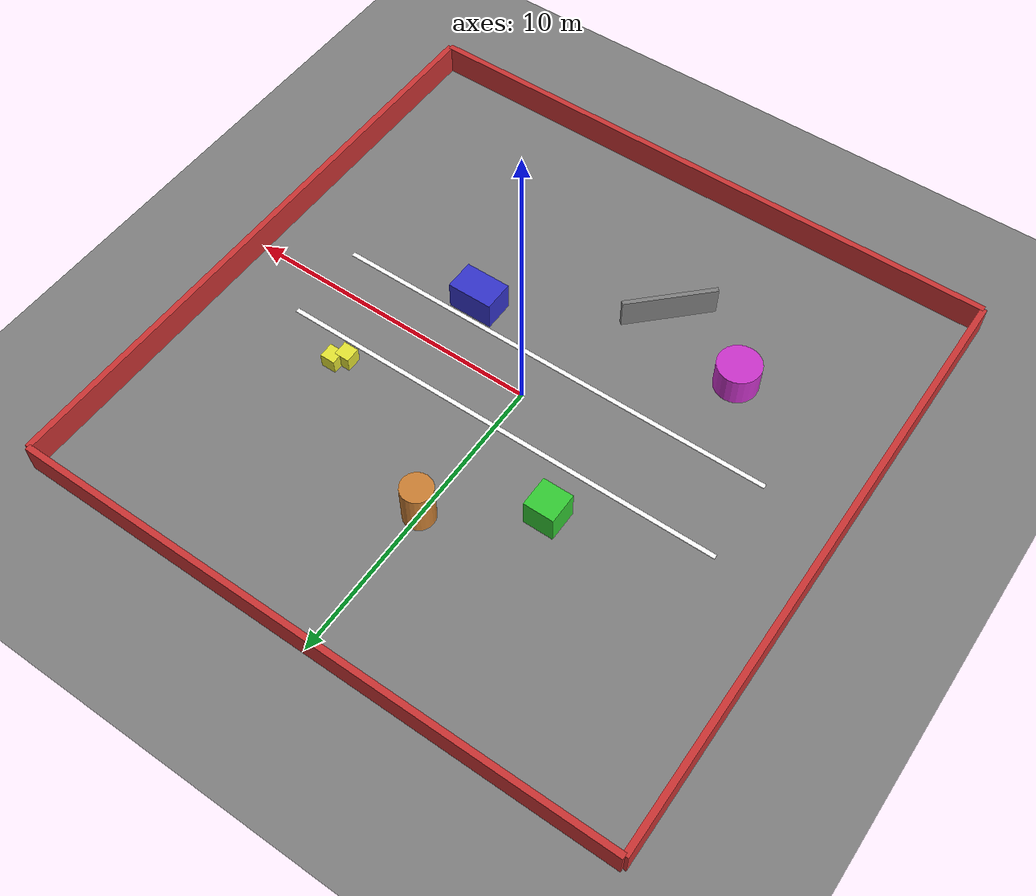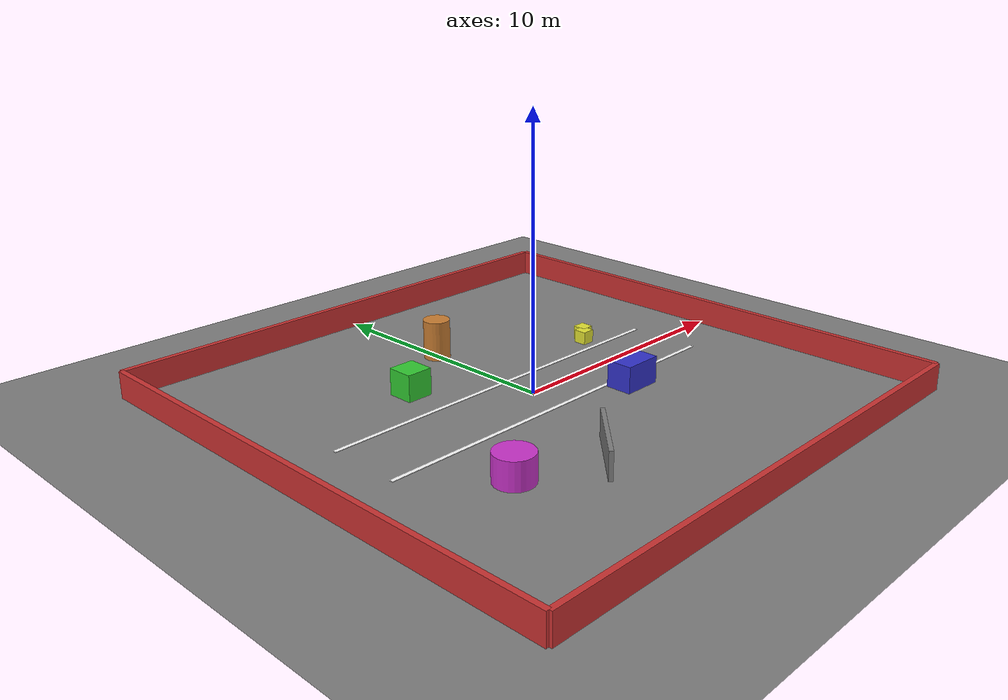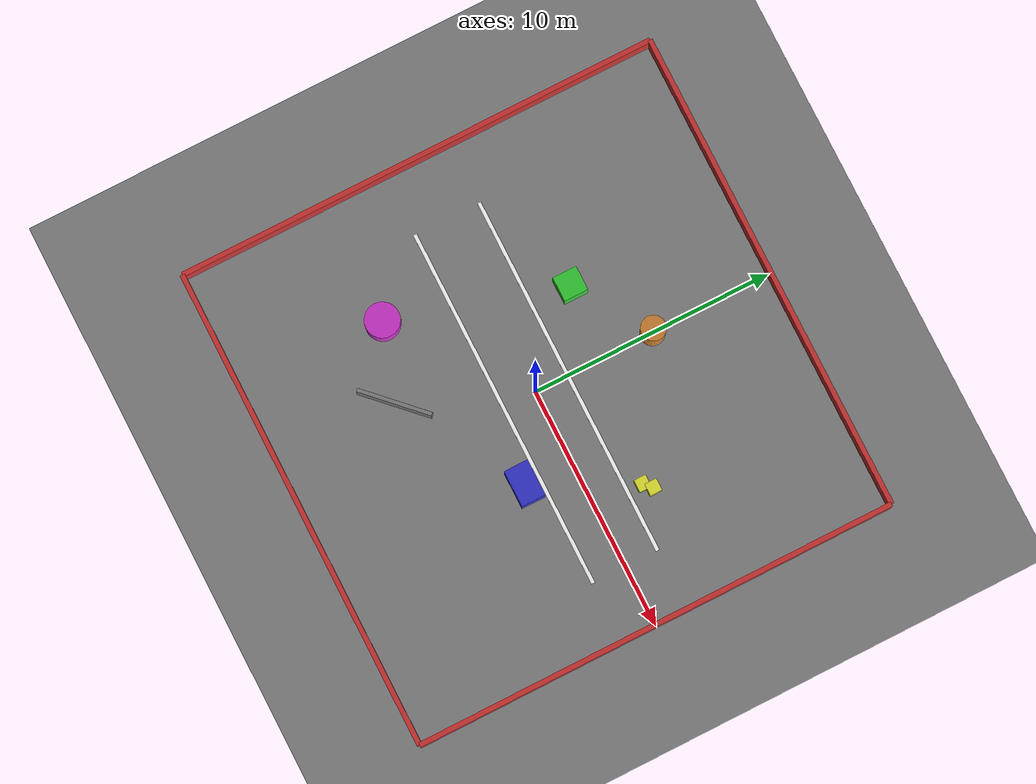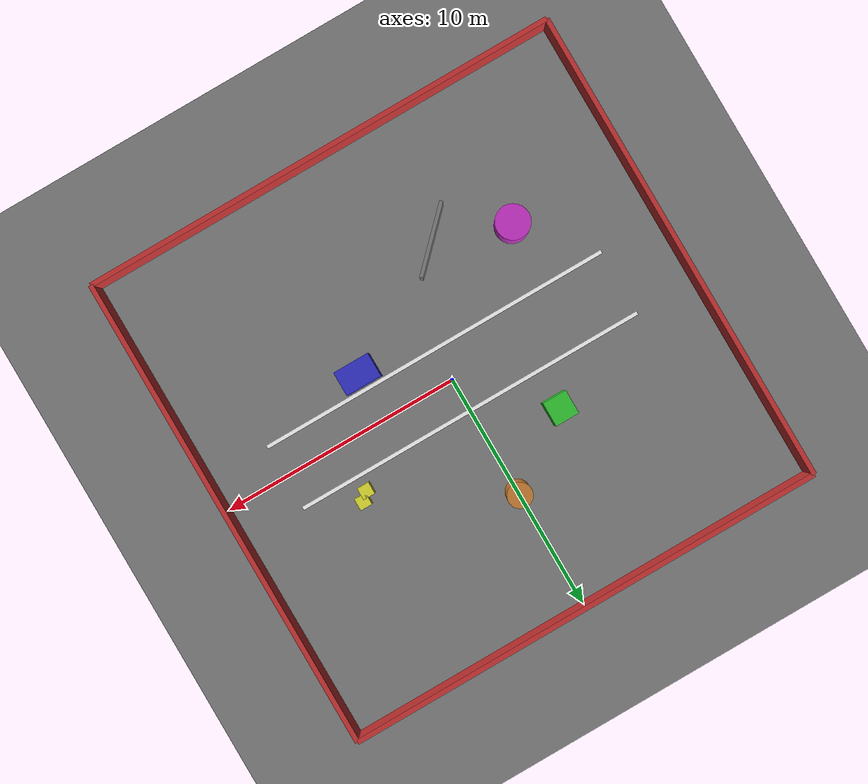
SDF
<?xml version="1.0"?>
<sdf version="1.8">

  <world name="mercury_world">

    <!-- ================= PHYSICS ================= -->
    <physics name="1ms" type="ode">
      <max_step_size>0.001</max_step_size>
      <real_time_factor>1.0</real_time_factor>
    </physics>

    <!-- ================= CORE SYSTEMS ================= -->
    <plugin filename="gz-sim-physics-system"
            name="gz::sim::systems::Physics"/>

    <plugin filename="gz-sim-user-commands-system"
            name="gz::sim::systems::UserCommands"/>

    <plugin filename="gz-sim-scene-broadcaster-system"
            name="gz::sim::systems::SceneBroadcaster"/>

    <plugin filename="gz-sim-contact-system"
            name="gz::sim::systems::Contact"/>

    <plugin filename="gz-sim-navsat-system"
        name="gz::sim::systems::NavSat"/>

    <plugin filename="gz-sim-imu-system"
        name="gz::sim::systems::Imu"/>

    <plugin filename="gz-sim-ros2-system"
        name="gz::sim::systems::ROS2"/>

    <!-- ================= SENSORS SYSTEM ================= -->
    <plugin filename="gz-sim-sensors-system"
        name="gz::sim::systems::Sensors">
  <render_engine>ogre2</render_engine>
</plugin>

    <!-- ================= GPS ORIGIN ================= -->
    <spherical_coordinates>
      <surface_model>EARTH_WGS84</surface_model>
      <latitude_deg>30.0444</latitude_deg>
      <longitude_deg>31.2357</longitude_deg>
      <elevation>0</elevation>
      <heading_deg>0</heading_deg>
    </spherical_coordinates>

    <!-- ================= SUN ================= -->
    <light name="sun" type="directional">
      <cast_shadows>true</cast_shadows>
      <pose>0 0 10 0 0 0</pose>
      <diffuse>1 1 1 1</diffuse>
      <specular>0.5 0.5 0.5 1</specular>
      <direction>-0.5 0.1 -0.9</direction>
    </light>

    <!-- ================= GROUND ================= -->
    <model name="ground_plane">
      <static>true</static>
      <link name="link">
        <collision name="collision">
          <geometry>
            <plane>
              <normal>0 0 1</normal>
              <size>100 100</size>
            </plane>
          </geometry>
        </collision>

        <visual name="visual">
          <geometry>
            <plane>
              <normal>0 0 1</normal>
              <size>100 100</size>
            </plane>
          </geometry>
          <material>
            <ambient>0.5 0.5 0.5 1</ambient>
            <diffuse>0.5 0.5 0.5 1</diffuse>
          </material>
        </visual>
      </link>
    </model>

    <!-- ================= WALLS (Perimeter) ================= -->

    <!-- North Wall -->
    <model name="wall_north">
      <static>true</static>
      <pose>0 10 0.5 0 0 0</pose>
      <link name="link">
        <collision name="collision">
          <geometry>
            <box>
              <size>20 0.2 1</size>
            </box>
          </geometry>
        </collision>
        <visual name="visual">
          <geometry>
            <box>
              <size>20 0.2 1</size>
            </box>
          </geometry>
          <material>
            <ambient>0.8 0.2 0.2 1</ambient>
            <diffuse>0.8 0.2 0.2 1</diffuse>
          </material>
        </visual>
      </link>
    </model>

    <!-- South Wall -->
    <model name="wall_south">
      <static>true</static>
      <pose>0 -10 0.5 0 0 0</pose>
      <link name="link">
        <collision name="collision">
          <geometry>
            <box>
              <size>20 0.2 1</size>
            </box>
          </geometry>
        </collision>
        <visual name="visual">
          <geometry>
            <box>
              <size>20 0.2 1</size>
            </box>
          </geometry>
          <material>
            <ambient>0.8 0.2 0.2 1</ambient>
            <diffuse>0.8 0.2 0.2 1</diffuse>
          </material>
        </visual>
      </link>
    </model>

    <!-- East Wall -->
    <model name="wall_east">
      <static>true</static>
      <pose>10 0 0.5 0 0 0</pose>
      <link name="link">
        <collision name="collision">
          <geometry>
            <box>
              <size>0.2 20 1</size>
            </box>
          </geometry>
        </collision>
        <visual name="visual">
          <geometry>
            <box>
              <size>0.2 20 1</size>
            </box>
          </geometry>
          <material>
            <ambient>0.8 0.2 0.2 1</ambient>
            <diffuse>0.8 0.2 0.2 1</diffuse>
          </material>
        </visual>
      </link>
    </model>

    <!-- West Wall -->
    <model name="wall_west">
      <static>true</static>
      <pose>-10 0 0.5 0 0 0</pose>
      <link name="link">
        <collision name="collision">
          <geometry>
            <box>
              <size>0.2 20 1</size>
            </box>
          </geometry>
        </collision>
        <visual name="visual">
          <geometry>
            <box>
              <size>0.2 20 1</size>
            </box>
          </geometry>
          <material>
            <ambient>0.8 0.2 0.2 1</ambient>
            <diffuse>0.8 0.2 0.2 1</diffuse>
          </material>
        </visual>
      </link>
    </model>

    <!-- ================= OBSTACLES (Inside) ================= -->

    <!-- Box 1 - Center Left -->
    <model name="box_1">
      <static>true</static>
      <pose>-3 3 0.5 0 0 0</pose>
      <link name="link">
        <collision name="collision">
          <geometry>
            <box>
              <size>1 1 1</size>
            </box>
          </geometry>
        </collision>
        <visual name="visual">
          <geometry>
            <box>
              <size>1 1 1</size>
            </box>
          </geometry>
          <material>
            <ambient>0.2 0.8 0.2 1</ambient>
            <diffuse>0.2 0.8 0.2 1</diffuse>
          </material>
        </visual>
      </link>
    </model>

    <!-- Box 2 - Center Right -->
    <model name="box_2">
      <static>true</static>
      <pose>3 -2 0.5 0 0 0</pose>
      <link name="link">
        <collision name="collision">
          <geometry>
            <box>
              <size>1.5 1 1</size>
            </box>
          </geometry>
        </collision>
        <visual name="visual">
          <geometry>
            <box>
              <size>1.5 1 1</size>
            </box>
          </geometry>
          <material>
            <ambient>0.2 0.2 0.8 1</ambient>
            <diffuse>0.2 0.2 0.8 1</diffuse>
          </material>
        </visual>
      </link>
    </model>

    <!-- Cylinder 1 - Front -->
    <model name="cylinder_1">
      <static>true</static>
      <pose>0 5 0.75 0 0 0</pose>
      <link name="link">
        <collision name="collision">
          <geometry>
            <cylinder>
              <radius>0.5</radius>
              <length>1.5</length>
            </cylinder>
          </geometry>
        </collision>
        <visual name="visual">
          <geometry>
            <cylinder>
              <radius>0.5</radius>
              <length>1.5</length>
            </cylinder>
          </geometry>
          <material>
            <ambient>0.8 0.5 0.2 1</ambient>
            <diffuse>0.8 0.5 0.2 1</diffuse>
          </material>
        </visual>
      </link>
    </model>

    <!-- Cylinder 2 - Back Left -->
    <model name="cylinder_2">
      <static>true</static>
      <pose>-5 -4 0.5 0 0 0</pose>
      <link name="link">
        <collision name="collision">
          <geometry>
            <cylinder>
              <radius>0.7</radius>
              <length>1</length>
            </cylinder>
          </geometry>
        </collision>
        <visual name="visual">
          <geometry>
            <cylinder>
              <radius>0.7</radius>
              <length>1</length>
            </cylinder>
          </geometry>
          <material>
            <ambient>0.8 0.2 0.8 1</ambient>
            <diffuse>0.8 0.2 0.8 1</diffuse>
          </material>
        </visual>
      </link>
    </model>

    <!-- Small Box Stack -->
    <model name="box_stack_1">
      <static>true</static>
      <pose>5 2 0.25 0 0 0</pose>
      <link name="link">
        <collision name="collision">
          <geometry>
            <box>
              <size>0.5 0.5 0.5</size>
            </box>
          </geometry>
        </collision>
        <visual name="visual">
          <geometry>
            <box>
              <size>0.5 0.5 0.5</size>
            </box>
          </geometry>
          <material>
            <ambient>0.9 0.9 0.2 1</ambient>
            <diffuse>0.9 0.9 0.2 1</diffuse>
          </material>
        </visual>
      </link>
    </model>

    <model name="box_stack_2">
      <static>true</static>
      <pose>5.3 2.3 0.25 0 0 0</pose>
      <link name="link">
        <collision name="collision">
          <geometry>
            <box>
              <size>0.5 0.5 0.5</size>
            </box>
          </geometry>
        </collision>
        <visual name="visual">
          <geometry>
            <box>
              <size>0.5 0.5 0.5</size>
            </box>
          </geometry>
          <material>
            <ambient>0.9 0.9 0.2 1</ambient>
            <diffuse>0.9 0.9 0.2 1</diffuse>
          </material>
        </visual>
      </link>
    </model>

    <!-- Narrow Wall/Barrier -->
    <model name="barrier">
      <static>true</static>
      <pose>-2 -5 0.5 0 0 0.785</pose>
      <link name="link">
        <collision name="collision">
          <geometry>
            <box>
              <size>3 0.15 1</size>
            </box>
          </geometry>
        </collision>
        <visual name="visual">
          <geometry>
            <box>
              <size>3 0.15 1</size>
            </box>
          </geometry>
          <material>
            <ambient>0.5 0.5 0.5 1</ambient>
            <diffuse>0.5 0.5 0.5 1</diffuse>
          </material>
        </visual>
      </link>
    </model>
    <model name="lane_left">
      <static>true</static>
      <pose>0 1.375 0.01 0 0 0</pose>

      <link name="link">
        <collision name="collision">
          <geometry>
            <box>
              <size>15 0.15 0.02</size>
            </box>
          </geometry>
        </collision>

        <visual name="visual">
          <geometry>
            <box>
              <size>15 0.15 0.02</size>
            </box>
          </geometry>

          <material>
            <ambient>1 1 1 1</ambient>
            <diffuse>1 1 1 1</diffuse>
          </material>
        </visual>
      </link>
    </model>

    <model name="lane_right">
      <static>true</static>
      <pose>0 -1.375 0.01 0 0 0</pose>

      <link name="link">
        <collision name="collision">
          <geometry>
            <box>
              <size>15 0.15 0.02</size>
            </box>
          </geometry>
        </collision>

        <visual name="visual">
          <geometry>
            <box>
              <size>15 0.15 0.02</size>
            </box>
          </geometry>

          <material>
            <ambient>1 1 1 1</ambient>
            <diffuse>1 1 1 1</diffuse>
          </material>
        </visual>
      </link>
    </model>

  </world>

</sdf>
